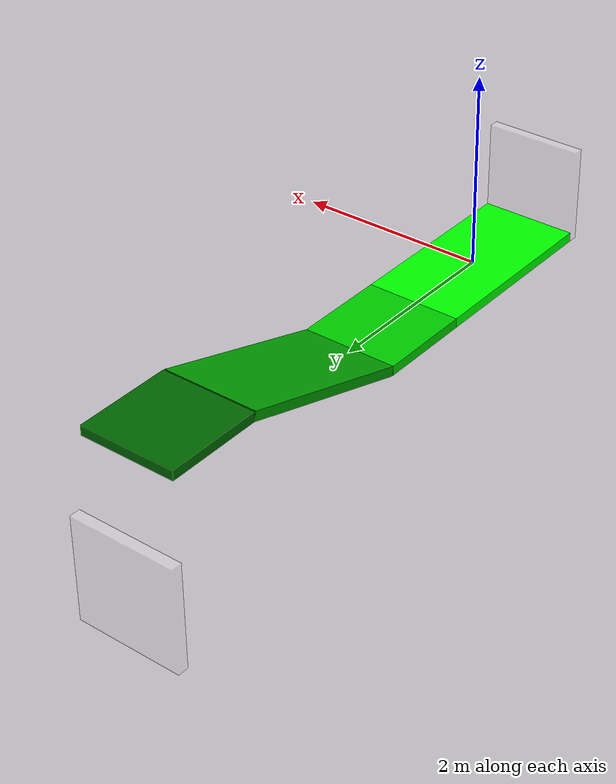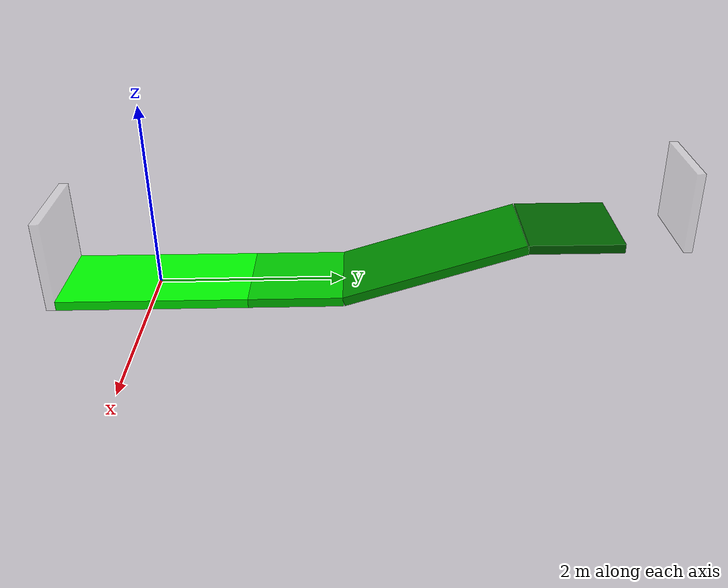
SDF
<?xml version="1.0" ?>
<sdf version="1.9">
	<world name="arena">
		<scene>
			<ambient>1 1 1 1</ambient>
			<grid>0</grid>
		</scene>
		<include>
			<uri>ground.sdf</uri>
		</include>
		<include>
			<uri>walls.sdf</uri>
		</include>
	</world>
</sdf>

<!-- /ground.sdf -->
<sdf version="1.9">
	<model name="ground">
		<static>true</static>
		<link name="link_lower_area">
			<pose>0 0 0 0 0 0</pose>
			<visual name="nest_area">
				<pose>0 0 0 0 0 0</pose>
				<geometry>
					<box>
						<size>1.0 2.0 0.1</size>
					</box>
				</geometry>
				<material>
					<diffuse>0 1 0 1</diffuse>
				</material>
			</visual>
			<visual name="cache_area">
				<pose>0 1.5 0 0 0 0</pose>
				<geometry>
					<box>
						<size>1.0 1.0 0.1</size>
					</box>
				</geometry>
				<material>
					<diffuse>0 0.8 0 1</diffuse>
				</material>
			</visual>
			<collision name="collision_lower_area">
				<pose>0 0.5 0 0 0 0</pose>
				<geometry>
					<box>
						<size>1.0 3.0 0.1</size>
					</box>
				</geometry>
			</collision>
		</link>
		<link name="link_slope">
			<pose relative_to="joint_cache_slope">0 1.0 0 0 0 0</pose>
			<visual name="visual_slope">
				<geometry>
					<box>
						<size>1.0 2.0 0.1</size>
					</box>
				</geometry>
				<material>
					<diffuse>0 0.6 0 1</diffuse>
				</material>
			</visual>
			<collision name="collision_slope">
				<geometry>
					<box>
						<size>1.0 2.0 0.1</size>
					</box>
				</geometry>
			</collision>
		</link>
		<link name="link_source_area">
			<pose relative_to="joint_slope_source">0 0.5 0 0 0 0</pose>
			<visual name="visual_source_area">
				<geometry>
					<box>
						<size>1.0 1.0 0.1</size>
					</box>
				</geometry>
				<material>
					<diffuse>0 0.4 0 1</diffuse>
				</material>
			</visual>
			<collision name="collision_source_area">
				<geometry>
					<box>
						<size>1.0 1.0 0.1</size>
					</box>
				</geometry>
			</collision>
		</link>
		<joint name="joint_cache_slope" type="fixed">
			<parent>link_lower_area</parent>
			<child>link_slope</child>
			<pose relative_to="link_lower_area">0 2.0 0 0.3 0  0</pose>
			<axis>
				<xyz>1 0 0</xyz>
			</axis>
		</joint>
		<joint name="joint_slope_source" type="fixed">
			<parent>link_slope</parent>
			<child>link_source_area</child>
			<pose relative_to="link_slope">0 1.0 0 -0.3 0 0</pose>
			<axis>
				<xyz>1 0 0</xyz>
			</axis>
		</joint>
	</model>
</sdf>

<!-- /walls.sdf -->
<sdf version="1.9">
	<model name="walls">
		<static>true</static>
		<link name="link_wall_nest">
			<pose>0 -1.05 0.45 0 0 0</pose>
			<visual name="visual_nest_wall">
				<geometry>
					<box>
						<size>1.0 0.1 1</size>
					</box>
				</geometry>
				<material>
					<diffuse>1 1 1 0.3</diffuse>
				</material>
			</visual>
			<collision name="collision_nest_wall">
				<geometry>
					<box>
						<size>1.0 0.1 1</size>
					</box>
				</geometry>
			</collision>
		</link>
		<link name="link_wall_source">
			<pose>-1.05 6.010672978251212 0.45 0 0 0</pose>
			<visual name="visual_source_wall">
				<geometry>
					<box>
						<size>1.0 0.1 1</size>
					</box>
				</geometry>
				<material>
					<diffuse>1 1 1 0.3</diffuse>
				</material>
			</visual>
			<collision name="collision_source_wall">
				<geometry>
					<box>
						<size>1.0 0.1 1</size>
					</box>
				</geometry>
			</collision>
		</link>
	</model>
</sdf>
